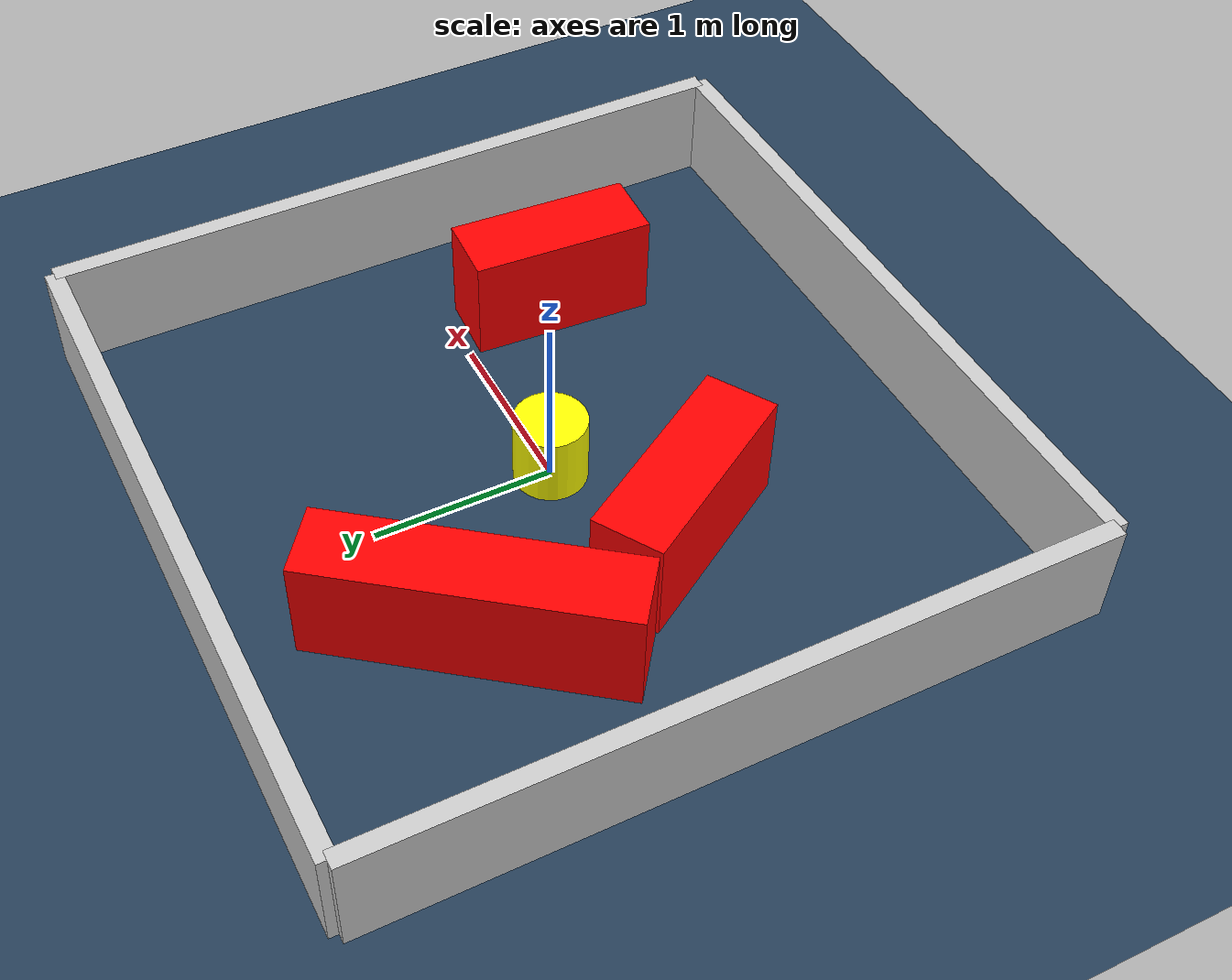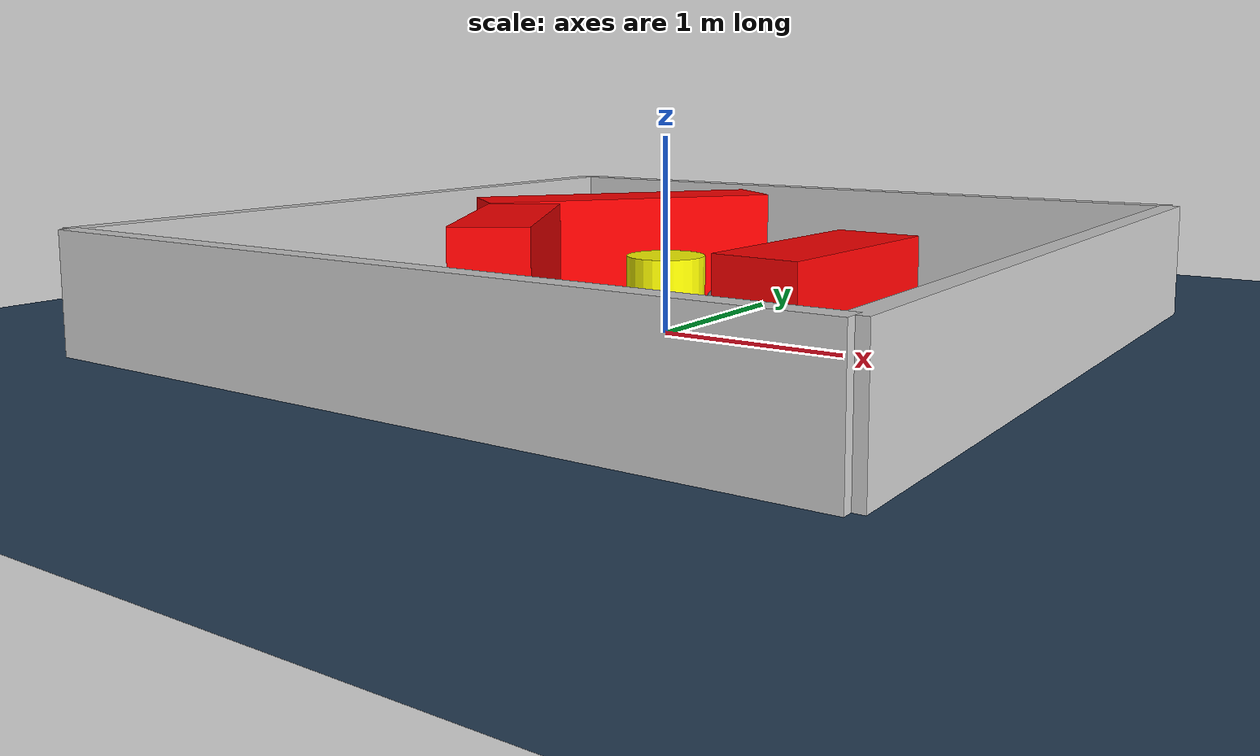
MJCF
<?xml version="1.0" ?>
<mujoco model="generated_environment">
  <option timestep="0.01" integrator="RK4" cone="elliptic"/>
  <default>
    <geom density="1"/>
  </default>
  <asset>
    <texture builtin="gradient" height="3072" rgb1="0.3 0.5 0.7" rgb2="0 0 0" type="skybox" width="512"/>
    <texture builtin="checker" height="300" mark="edge" markrgb="0.8 0.8 0.8" name="groundplane" rgb1="0.2 0.3 0.4" rgb2="0.1 0.2 0.3" type="2d" width="300"/>
    <material name="groundplane" reflectance="0.2" texrepeat="5 5" texture="groundplane" texuniform="true"/>
    <material name="robot" rgba="0.0 1.0 0.0 1"/>
  </asset>
  <worldbody>
    <light dir="0 0 -1" directional="true" pos="0 0 1.5"/>
    <geom condim="4" friction="1.0 0.005 0.001" material="groundplane" name="floor" size="0 0 0.05" type="plane"/>
    <body name="walls">
      <geom name="wall_1" condim="4" pos="-2.0 0.0 0.3" rgba="0.800000011920929 0.800000011920929 0.800000011920929 1.0" size="0.05 2.0 0.3" type="box"/>
      <geom name="wall_2" condim="4" pos="2.0 0.0 0.3" rgba="0.800000011920929 0.800000011920929 0.800000011920929 1.0" size="0.05 2.0 0.3" type="box"/>
      <geom name="wall_3" condim="4" pos="0.0 -2.0 0.3" rgba="0.800000011920929 0.800000011920929 0.800000011920929 1.0" size="2.0 0.05 0.3" type="box"/>
      <geom name="wall_4" condim="4" pos="0.0 2.0 0.3" rgba="0.800000011920929 0.800000011920929 0.800000011920929 1.0" size="2.0 0.05 0.3" type="box"/>
    </body>
    <body name="robot">
      <joint name="joint_x" type="slide" pos="0 0 0" axis="1 0 0"/>
      <joint name="joint_y" type="slide" pos="0 0 0" axis="0 1 0"/>
      <geom name="robot" type="sphere" pos="0.3 0.0 0.2" size="0.05" mass="5." friction="1.0 0.005 0.0001" condim="4" rgba="0.5 0.5 0.5 1.0"/>
      <site name="sensor_ball"/>
    </body>
    <body name="obstacle_movable_1">
      <geom name="obstacle_movable_1" condim="4" pos="0.0 0.0 0.2" euler="0 0 0.0" friction="1.0 0.005 0.001" rgba="1.0 1.0 0.0 1.0" size="0.2 0.2 0.0" type="cylinder" mass="0.1"/>
      <joint type="free"/>
    </body>
    <body name="obstacle_2_static">
      <geom name="obstacle_2_static" condim="4" pos="-0.8520876486801554 0.8269714832305743 0.3" euler="0 0 232.87536704089996" friction="1.0 0.005 0.001" rgba="1 0 0 1" size="0.8470250875585863 0.2 0.3" type="box"/>
    </body>
    <body name="obstacle_3_static">
      <geom name="obstacle_3_static" condim="4" pos="1.167804607859843 -0.5807553556951672 0.3" euler="0 0 266.5987538909861" friction="1.0 0.005 0.001" rgba="1 0 0 1" size="0.5128412512255183 0.2 0.3" type="box"/>
    </body>
    <body name="obstacle_4_static">
      <geom name="obstacle_4_static" condim="4" pos="-0.7203693677646632 -0.3827734345669025 0.3" euler="0 0 301.5272410484319" friction="1.0 0.005 0.001" rgba="1 0 0 1" size="0.577687245441489 0.2 0.3" type="box"/>
    </body>
  </worldbody>
  <actuator>
    <motor name="actuator_x" joint="joint_x" gear="1" ctrlrange="-1 1"/>
    <motor name="actuator_y" joint="joint_y" gear="1" ctrlrange="-1 1"/>
  </actuator>
</mujoco>
